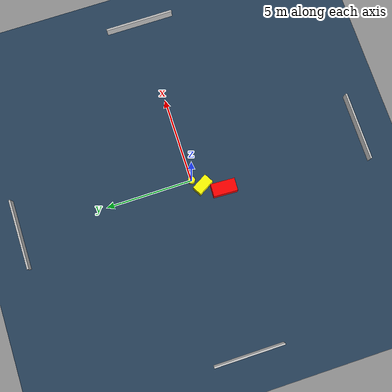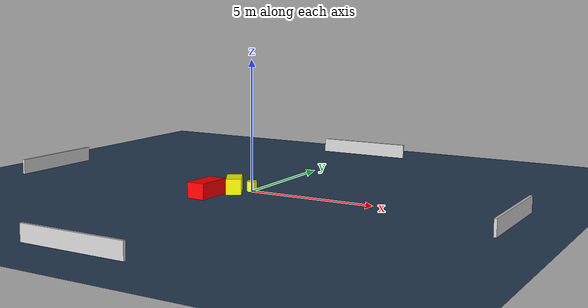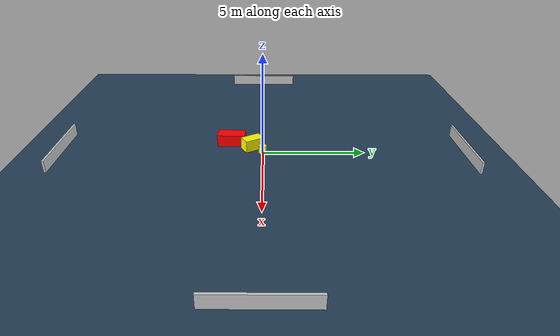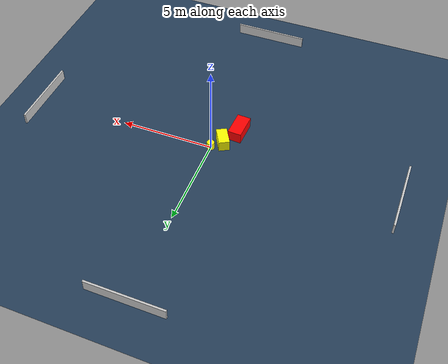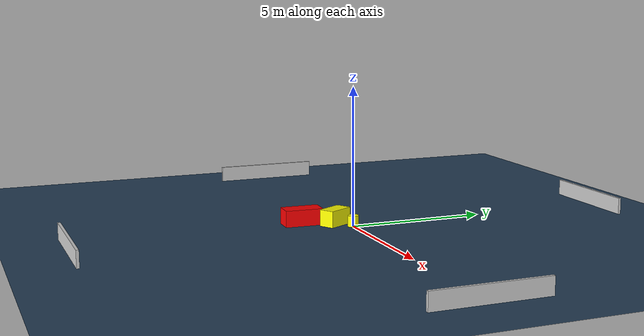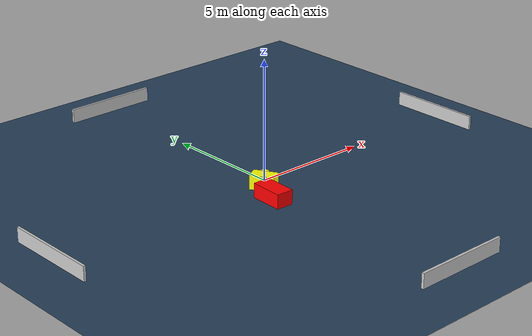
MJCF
<?xml version="1.0" ?>
<mujoco model="generated_environment">
  <option timestep="0.01" integrator="RK4" cone="elliptic"/>
  <default>
    <geom density="1"/>
  </default>
  <asset>
    <texture builtin="gradient" height="3072" name="skybox" rgb1="0.3 0.5 0.7" rgb2="0 0 0" type="skybox" width="512"/>
    <texture builtin="checker" height="300" name="groundplane" rgb1="0.2 0.3 0.4" rgb2="0.1 0.2 0.3" type="2d" width="300"/>
    <material name="groundplane" reflectance="0.2" texrepeat="5 5" texture="groundplane"/>
  </asset>
  <worldbody>
    <light dir="0 0 -1" directional="true" pos="0 0 1.5"/>
    <geom condim="3" friction="0.5 0.005 0.001" material="groundplane" name="floor" pos="0 0 0" size="0 0 0.05" type="plane"/>
    <body name="walls">
      <geom name="wall_1" condim="4" pos="-10.0 0.0 0.3" rgba="0.800000011920929 0.800000011920929 0.800000011920929 1.0" size="0.05 2.0 0.3" type="box"/>
      <geom name="wall_2" condim="4" pos="10.0 0.0 0.3" rgba="0.800000011920929 0.800000011920929 0.800000011920929 1.0" size="0.05 2.0 0.3" type="box"/>
      <geom name="wall_3" condim="4" pos="0.0 -10.0 0.3" rgba="0.800000011920929 0.800000011920929 0.800000011920929 1.0" size="2.0 0.05 0.3" type="box"/>
      <geom name="wall_4" condim="4" pos="0.0 10.0 0.3" rgba="0.800000011920929 0.800000011920929 0.800000011920929 1.0" size="2.0 0.05 0.3" type="box"/>
    </body>
    <body name="robot">
      <joint name="joint_x" type="slide" pos="0 0 0" axis="1 0 0"/>
      <joint name="joint_y" type="slide" pos="0 0 0" axis="0 1 0"/>
      <geom name="robot" type="cylinder" pos="0.0 0.0 0.2" size="0.2 0.2 0.0" mass="5.0" friction="1.0 0.005 0.0001" condim="4" rgba="1.0 1.0 0.0 1.0"/>
    </body>
    <body name="obstacle_1_movable">
      <geom name="obstacle_1_movable" condim="4" pos="-0.4818153031295336 -0.5080960219205864 0.3" euler="0 0 119.86102783429705" friction="0.0 0.005 0.001" rgba="1.0 1.0 0.0 1.0" size="0.5055931409341727 0.2878534149866058 0.3" type="box" mass="0.1"/>
      <joint type="free"/>
    </body>
    <body name="obstacle_2_static">
      <geom name="obstacle_2_static" condim="4" pos="-1.0042160354778467 -1.5891566115334856 0.3" euler="0 0 87.52970602016558" friction="0.0 0.005 0.001" rgba="1.0 0.0 0.0 1.0" size="0.6953942794364899 0.36345360192416654 0.3" type="box"/>
    </body>
  </worldbody>
  <actuator>
    <motor name="actuator_x" joint="joint_x" gear="1" ctrlrange="-1 1"/>
    <motor name="actuator_y" joint="joint_y" gear="1" ctrlrange="-1 1"/>
  </actuator>
</mujoco>
